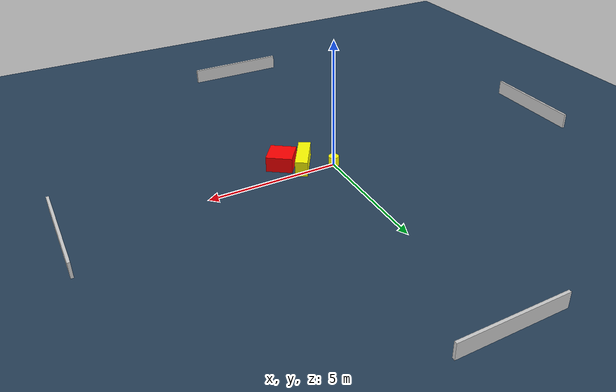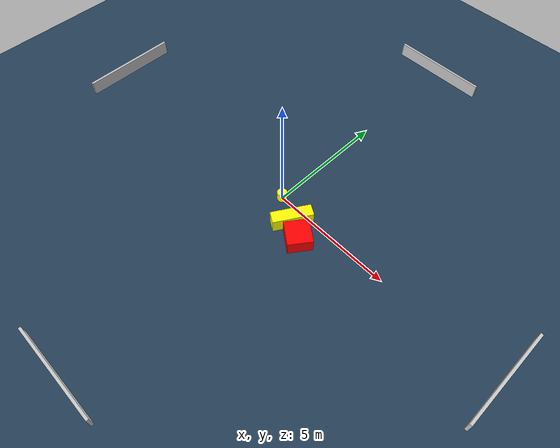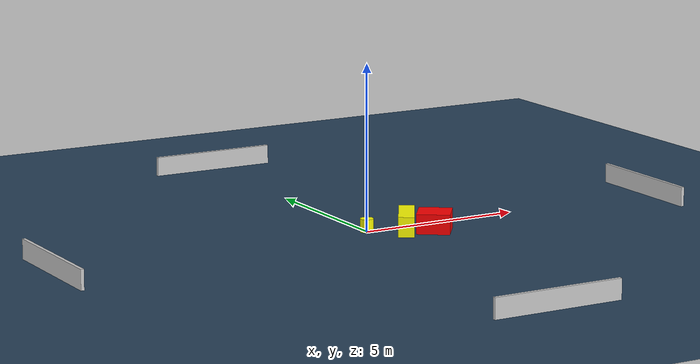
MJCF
<?xml version="1.0" ?>
<mujoco model="generated_environment">
  <option timestep="0.01" integrator="RK4" cone="elliptic"/>
  <default>
    <geom density="1"/>
  </default>
  <asset>
    <texture builtin="gradient" height="3072" name="skybox" rgb1="0.3 0.5 0.7" rgb2="0 0 0" type="skybox" width="512"/>
    <texture builtin="checker" height="300" name="groundplane" rgb1="0.2 0.3 0.4" rgb2="0.1 0.2 0.3" type="2d" width="300"/>
    <material name="groundplane" reflectance="0.2" texrepeat="5 5" texture="groundplane"/>
  </asset>
  <worldbody>
    <light dir="0 0 -1" directional="true" pos="0 0 1.5"/>
    <geom condim="3" friction="0.5 0.005 0.001" material="groundplane" name="floor" pos="0 0 0" size="0 0 0.05" type="plane"/>
    <body name="walls">
      <geom name="wall_1" condim="4" pos="-10.0 0.0 0.3" rgba="0.800000011920929 0.800000011920929 0.800000011920929 1.0" size="0.05 2.0 0.3" type="box"/>
      <geom name="wall_2" condim="4" pos="10.0 0.0 0.3" rgba="0.800000011920929 0.800000011920929 0.800000011920929 1.0" size="0.05 2.0 0.3" type="box"/>
      <geom name="wall_3" condim="4" pos="0.0 -10.0 0.3" rgba="0.800000011920929 0.800000011920929 0.800000011920929 1.0" size="2.0 0.05 0.3" type="box"/>
      <geom name="wall_4" condim="4" pos="0.0 10.0 0.3" rgba="0.800000011920929 0.800000011920929 0.800000011920929 1.0" size="2.0 0.05 0.3" type="box"/>
    </body>
    <body name="robot">
      <joint name="joint_x" type="slide" pos="0 0 0" axis="1 0 0"/>
      <joint name="joint_y" type="slide" pos="0 0 0" axis="0 1 0"/>
      <geom name="robot" type="cylinder" pos="0.0 0.0 0.2" size="0.2 0.2 0.0" mass="5.0" friction="1.0 0.005 0.0001" condim="4" rgba="1.0 1.0 0.0 1.0"/>
    </body>
    <body name="obstacle_1_movable">
      <geom name="obstacle_1_movable" condim="4" pos="1.0474810687911917 -0.51506586360827 0.3" euler="0 0 328.6780636372208" friction="0.0 0.005 0.001" rgba="1.0 1.0 0.0 1.0" size="0.2360654259754913 0.7924397152496114 0.3" type="box" mass="0.1"/>
      <joint type="free"/>
    </body>
    <body name="obstacle_2_static">
      <geom name="obstacle_2_static" condim="4" pos="1.769619406986621 -0.9100990646647328 0.3" euler="0 0 323.95960447285046" friction="0.0 0.005 0.001" rgba="1.0 0.0 0.0 1.0" size="0.4992605326149549 0.4861673974471995 0.3" type="box"/>
    </body>
  </worldbody>
  <actuator>
    <motor name="actuator_x" joint="joint_x" gear="1" ctrlrange="-1 1"/>
    <motor name="actuator_y" joint="joint_y" gear="1" ctrlrange="-1 1"/>
  </actuator>
</mujoco>
